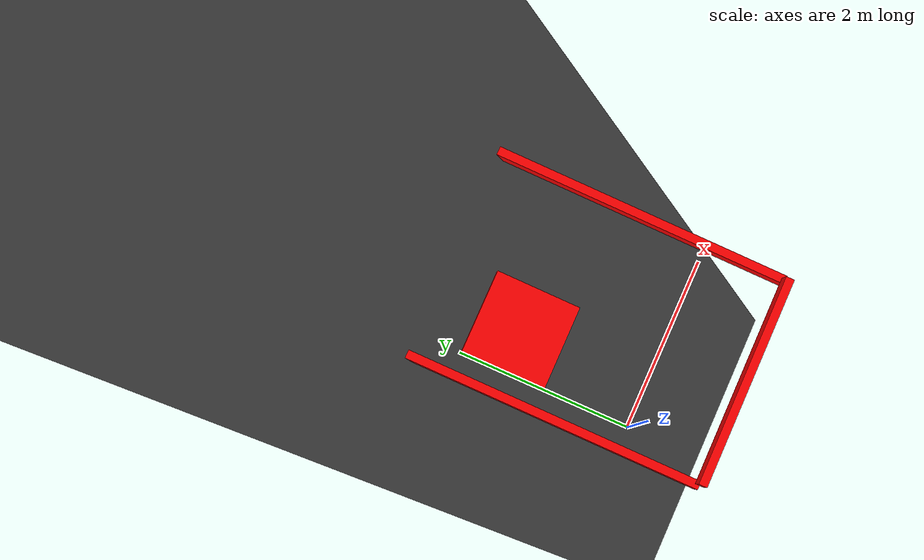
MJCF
<mujoco model="friction_floor_uniform">
  <compiler angle="radian" />
  <asset>
    <texture name='a' builtin="gradient" height="100" rgb1="1 1 1" rgb2="0 0 0" type="skybox" width="100"/>
    <texture name="texplane0" type="2d" builtin="checker" rgb1="0 0 0" rgb2="0.8 0.8 0.8" width="100" height="100" mark="cross" markrgb=".8 .8 .8"/>
    <material name="matplane0" reflectance="0.3" texture="texplane0" texrepeat="1 1" texuniform="true"/>
  </asset>
  <visual>
    <headlight ambient="0.6 0.6 0.6" diffuse="0.5 0.5 0.5" specular="0.2 0.2 0.2"/>
    <map znear="0.001" />
  </visual>
  <worldbody>
    <geom contype="1" friction="1 0 0.01" name="floor0" pos="0 0 -0.1" euler="0.125 0 0" size="100 100 0.01" type="box" material="matplane0" condim="6"/>
    <body name="obstacle_obstacle_0">
        <geom name="obstacle_obstacle_0" type="box" pos="0.5 1.5 -0.1" euler="0.0625 0.0 0.0" size="0.5 0.5 0.1" rgba="1.0 0.0 0.0 1"/>
    </body>
    <body name="obstacle_obstacle_1">
        <geom name="obstacle_obstacle_1" type="box" pos="1.5 3.5 -0.1" euler="0.0625 0.0 0.0" size="0.5 0.5 0.1" rgba="1.0 0.0 0.0 1"/>
    </body>
    <body name="obstacle_wall_down">
        <geom name="obstacle_wall_down" type="box" pos="1 -1 -0.1" euler="0.0625 0.0 0.0" size="1.25 0.05 0.1" rgba="1.0 0.0 0.0 1"/>
    </body>
    <body name="obstacle_wall_up">
        <geom name="obstacle_wall_up" type="box" pos="1 6 -0.1" euler="0.0625 0.0 0.0" size="1.25 0.05 0.1" rgba="1.0 0.0 0.0 1"/>
    </body>
    <body name="obstacle_wall_left">
        <geom name="obstacle_wall_left" type="box" pos="-.25 2.5 -0.1" euler="0.0625 0.0 0.0" size="0.05 3.5 0.1" rgba="1.0 0.0 0.0 1"/>
    </body>
    <body name="obstacle_wall_right">
        <geom name="obstacle_wall_right" type="box" pos="2.25 2.5 -0.1" euler="0.0625 0.0 0.0" size="0.05 3.5 0.1" rgba="1.0 0.0 0.0 1"/>
    </body>

  </worldbody>
</mujoco>
